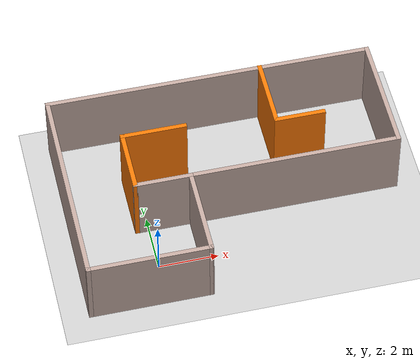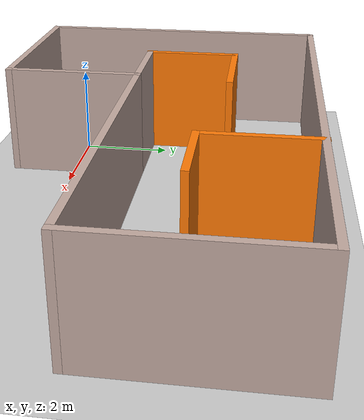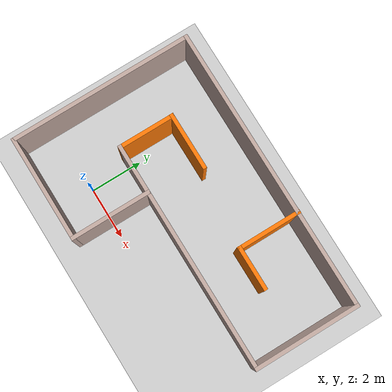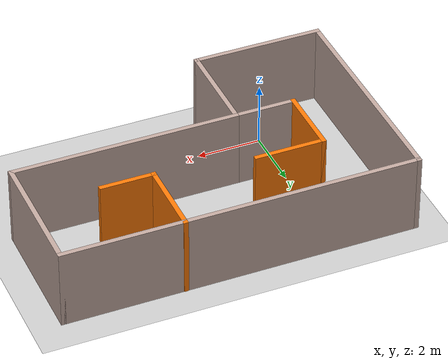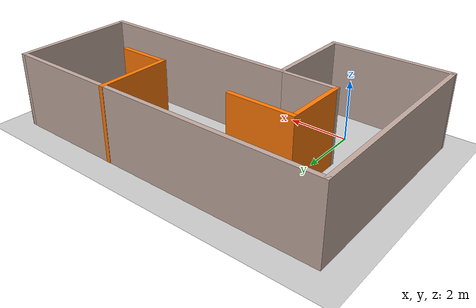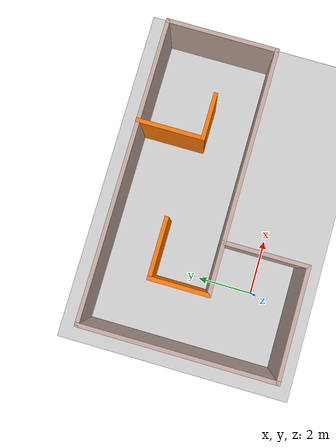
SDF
<sdf version="1.6">
 <world name="default">
  <light name="sun" type="directional">
   <pose>0 0 10 0 -0 0</pose>
   <diffuse>0.8 0.8 0.8 1</diffuse>
   <specular>0.2 0.2 0.2 1</specular>
   <attenuation>
    <range>1000</range>
    <constant>0.9</constant>
    <linear>0.01</linear>
    <quadratic>0.001</quadratic>
   </attenuation>
   <direction>-0.5 0.1 -0.9</direction>
  </light>
  <model name="ground_plane">
   <static>1</static>
   <link name="link">
    <collision name="collision">
     <geometry><plane><normal>0 0 1</normal><size>100 100</size></plane></geometry>
     <surface>
      <contact><collide_bitmask>65535</collide_bitmask></contact>
      <friction><ode><mu>100</mu><mu2>50</mu2></ode></friction>
     </surface>
    </collision>
    <visual name="visual">
     <cast_shadows>0</cast_shadows>
     <geometry><plane><normal>0 0 1</normal><size>100 100</size></plane></geometry>
     <material>
      <script><uri>file://media/materials/scripts/gazebo.material</uri><name>Gazebo/Grey</name></script>
     </material>
    </visual>
   </link>
  </model>
  <gravity>0 0 -9.8</gravity>
  <magnetic_field>6e-06 2.3e-05 -4.2e-05</magnetic_field>
  <atmosphere type="adiabatic"/>
  <physics name="default_physics" default="0" type="ode">
   <max_step_size>0.001</max_step_size>
   <real_time_factor>1</real_time_factor>
   <real_time_update_rate>1000</real_time_update_rate>
  </physics>
  <scene><ambient>0.4 0.4 0.4 1</ambient><background>0.7 0.7 0.7 1</background><shadows>1</shadows></scene>
  <audio><device>default</device></audio>
  <spherical_coordinates>
   <surface_model>EARTH_WGS84</surface_model>
   <latitude_deg>0</latitude_deg>
   <longitude_deg>0</longitude_deg>
   <elevation>0</elevation>
   <heading_deg>0</heading_deg>
  </spherical_coordinates>
  <model name="hs_world_model">
   <pose>2.95598 2.08815 0 0 -0 0</pose>
   <link name="Wall_12">
    <collision name="Wall_12_Collision">
     <geometry><box><size>4.15 0.15 2.5</size></box></geometry>
     <pose>0 0 1.25 0 -0 0</pose>
    </collision>
    <visual name="Wall_12_Visual">
     <pose>0 0 1.25 0 -0 0</pose>
     <geometry><box><size>4.15 0.15 2.5</size></box></geometry>
     <material>
      <script><uri>file://media/materials/scripts/gazebo.material</uri><name>Gazebo/Grey</name></script>
      <ambient>0.760784 0.662745 0.627451 1</ambient>
     </material>
     <meta><layer>0</layer></meta>
    </visual>
    <pose>-3.5 -3.50556 0 0 -0 0</pose>
   </link>
   <link name="Wall_14">
    <collision name="Wall_14_Collision">
     <geometry><box><size>2 0.15 2.5</size></box></geometry>
     <pose>0 0 1.25 0 -0 0</pose>
    </collision>
    <visual name="Wall_14_Visual">
     <pose>0 0 1.25 0 -0 0</pose>
     <geometry><box><size>2 0.15 2.5</size></box></geometry>
     <material>
      <script><uri>file://media/materials/scripts/gazebo.material</uri><name>Gazebo/Grey</name></script>
      <ambient>0.760784 0.662745 0.627451 1</ambient>
     </material>
     <meta><layer>0</layer></meta>
    </visual>
    <pose>-2.425 -0.505562 0 0 -0 3.14159</pose>
   </link>
   <link name="Wall_15">
    <collision name="Wall_15_Collision">
     <geometry><box><size>2.25 0.15 2.5</size></box></geometry>
     <pose>0 0 1.25 0 -0 0</pose>
    </collision>
    <visual name="Wall_15_Visual">
     <pose>0 0 1.25 0 -0 0</pose>
     <geometry><box><size>2.25 0.15 2.5</size></box></geometry>
     <material>
      <script><uri>file://media/materials/scripts/gazebo.material</uri><name>Gazebo/Grey</name></script>
      <ambient>0.996078 0.47451 0.0196078 1</ambient>
     </material>
     <meta><layer>0</layer></meta>
    </visual>
    <pose>-3.35 0.544438 0 0 -0 1.5708</pose>
   </link>
   <link name="Wall_16">
    <collision name="Wall_16_Collision">
     <geometry><box><size>2.25 0.15 2.5</size></box></geometry>
     <pose>0 0 1.25 0 -0 0</pose>
    </collision>
    <visual name="Wall_16_Visual">
     <pose>0 0 1.25 0 -0 0</pose>
     <geometry><box><size>2.25 0.15 2.5</size></box></geometry>
     <material>
      <script><uri>file://media/materials/scripts/gazebo.material</uri><name>Gazebo/Grey</name></script>
      <ambient>0.996078 0.47451 0.0196078 1</ambient>
     </material>
     <meta><layer>0</layer></meta>
    </visual>
    <pose>-2.3 1.59444 0 0 -0 0</pose>
   </link>
   <link name="Wall_21">
    <collision name="Wall_21_Collision">
     <geometry><box><size>2.5 0.15 2.5</size></box></geometry>
     <pose>0 0 1.25 0 -0 0</pose>
    </collision>
    <visual name="Wall_21_Visual">
     <pose>0 0 1.25 0 -0 0</pose>
     <geometry><box><size>2.5 0.15 2.5</size></box></geometry>
     <material>
      <script><uri>file://media/materials/scripts/gazebo.material</uri><name>Gazebo/Grey</name></script>
      <ambient>0.996078 0.47451 0.0196078 1</ambient>
     </material>
     <meta><layer>0</layer></meta>
    </visual>
    <pose>1.77271 2.33056 0 0 -0 -1.5708</pose>
   </link>
   <link name="Wall_22">
    <collision name="Wall_22_Collision">
     <geometry><box><size>1.75 0.15 2.5</size></box></geometry>
     <pose>0 0 1.25 0 -0 0</pose>
    </collision>
    <visual name="Wall_22_Visual">
     <pose>0 0 1.25 0 -0 0</pose>
     <geometry><box><size>1.75 0.15 2.5</size></box></geometry>
     <material>
      <script><uri>file://media/materials/scripts/gazebo.material</uri><name>Gazebo/Grey</name></script>
      <ambient>0.996078 0.47451 0.0196078 1</ambient>
     </material>
     <meta><layer>0</layer></meta>
    </visual>
    <pose>2.57271 1.15556 0 0 -0 0</pose>
   </link>
   <link name="Wall_5">
    <collision name="Wall_5_Collision">
     <geometry><box><size>7.15 0.15 2.5</size></box></geometry>
     <pose>0 0 1.25 0 -0 0</pose>
    </collision>
    <visual name="Wall_5_Visual">
     <pose>0 0 1.25 0 -0 0</pose>
     <geometry><box><size>7.15 0.15 2.5</size></box></geometry>
     <material>
      <script><uri>file://media/materials/scripts/gazebo.material</uri><name>Gazebo/Grey</name></script>
      <ambient>0.760784 0.662745 0.627451 1</ambient>
     </material>
     <meta><layer>0</layer></meta>
    </visual>
    <pose>-5.5 -0.005562 0 0 -0 1.5708</pose>
   </link>
   <link name="Wall_6">
    <collision name="Wall_6_Collision">
     <geometry><box><size>11.15 0.15 2.5</size></box></geometry>
     <pose>0 0 1.25 0 -0 0</pose>
    </collision>
    <visual name="Wall_6_Visual">
     <pose>0 0 1.25 0 -0 0</pose>
     <geometry><box><size>11.15 0.15 2.5</size></box></geometry>
     <material>
      <script><uri>file://media/materials/scripts/gazebo.material</uri><name>Gazebo/Grey</name></script>
      <ambient>0.760784 0.662745 0.627451 1</ambient>
     </material>
     <meta><layer>0</layer></meta>
    </visual>
    <pose>0 3.49444 0 0 -0 0</pose>
   </link>
   <link name="Wall_7">
    <collision name="Wall_7_Collision">
     <geometry><box><size>4.15 0.15 2.5</size></box></geometry>
     <pose>0 0 1.25 0 -0 0</pose>
    </collision>
    <visual name="Wall_7_Visual">
     <pose>0 0 1.25 0 -0 0</pose>
     <geometry><box><size>4.15 0.15 2.5</size></box></geometry>
     <material>
      <script><uri>file://media/materials/scripts/gazebo.material</uri><name>Gazebo/Grey</name></script>
      <ambient>0.760784 0.662745 0.627451 1</ambient>
     </material>
     <meta><layer>0</layer></meta>
    </visual>
    <pose>5.5 1.49444 0 0 -0 -1.5708</pose>
   </link>
   <link name="Wall_8">
    <collision name="Wall_8_Collision">
     <geometry><box><size>7.15 0.15 2.5</size></box></geometry>
     <pose>0 0 1.25 0 -0 0</pose>
    </collision>
    <visual name="Wall_8_Visual">
     <pose>0 0 1.25 0 -0 0</pose>
     <geometry><box><size>7.15 0.15 2.5</size></box></geometry>
     <material>
      <script><uri>file://media/materials/scripts/gazebo.material</uri><name>Gazebo/Grey</name></script>
      <ambient>0.760784 0.662745 0.627451 1</ambient>
     </material>
     <meta><layer>0</layer></meta>
    </visual>
    <pose>2 -0.505562 0 0 -0 3.14159</pose>
   </link>
   <link name="Wall_9">
    <collision name="Wall_9_Collision">
     <geometry><box><size>3.15 0.15 2.5</size></box></geometry>
     <pose>0 0 1.25 0 -0 0</pose>
    </collision>
    <visual name="Wall_9_Visual">
     <pose>0 0 1.25 0 -0 0</pose>
     <geometry><box><size>3.15 0.15 2.5</size></box></geometry>
     <material>
      <script><uri>file://media/materials/scripts/gazebo.material</uri><name>Gazebo/Grey</name></script>
      <ambient>0.760784 0.662745 0.627451 1</ambient>
     </material>
     <meta><layer>0</layer></meta>
    </visual>
    <pose>-1.5 -2.00556 0 0 -0 -1.5708</pose>
   </link>
   <static>1</static>
  </model>
 </world>
</sdf>
